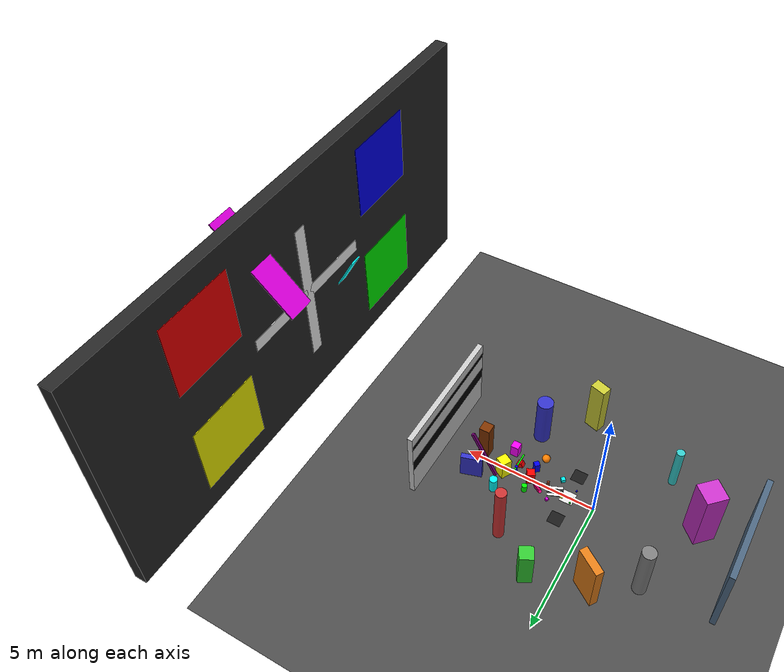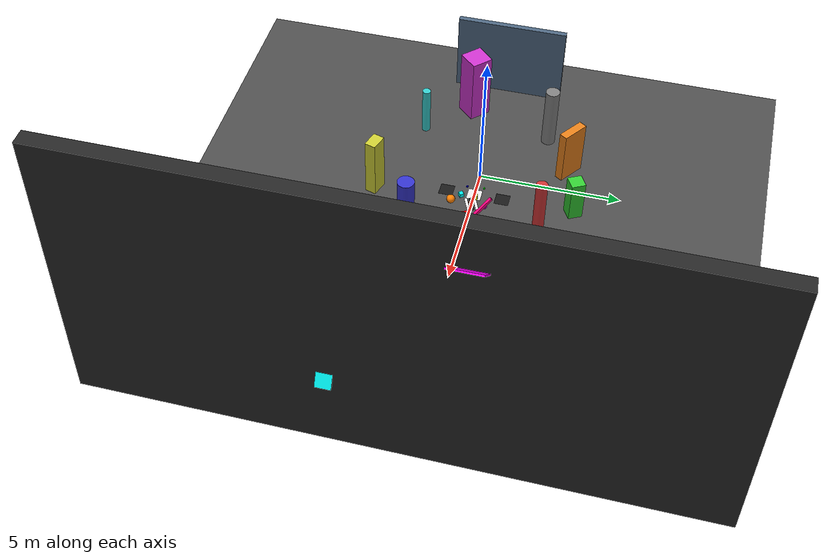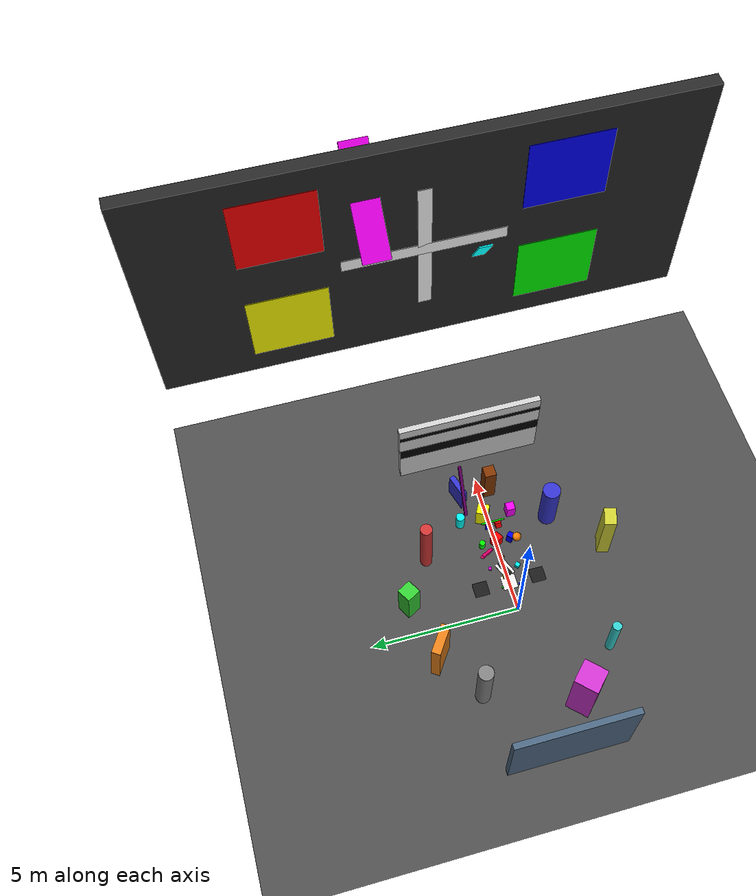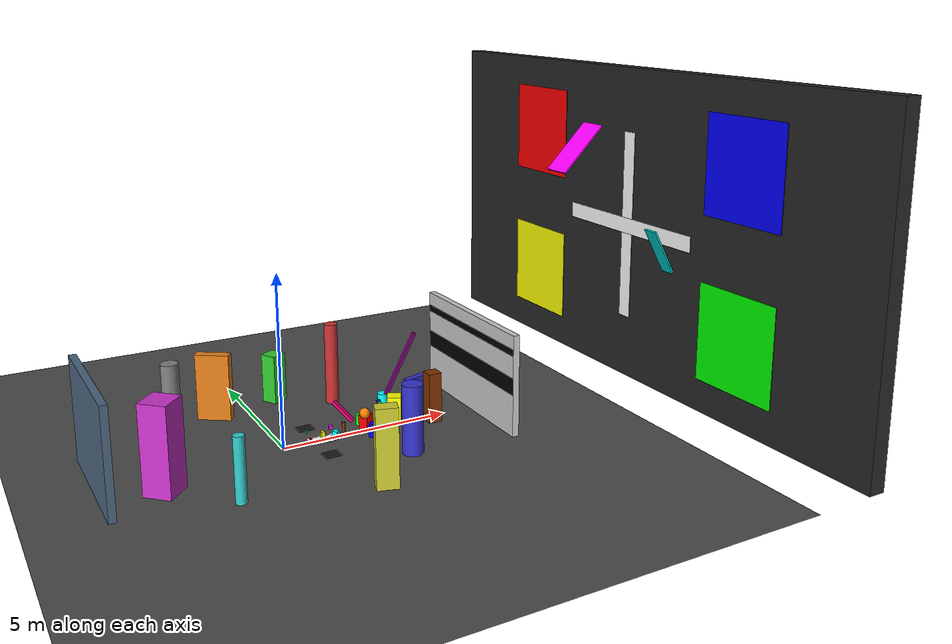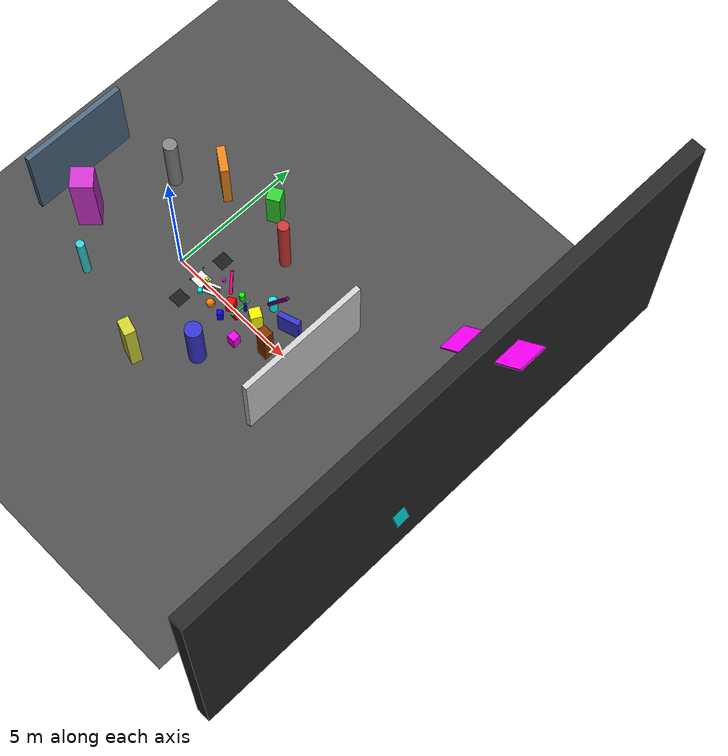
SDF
<sdf version="1.6">
 <world name="geometric_world">
  <physics name="1ms" type="ignored">
   <max_step_size>0.001</max_step_size>
   <real_time_factor>1.0</real_time_factor>
  </physics>
  <plugin filename="gz-sim-physics-system" name="gz::sim::systems::Physics"/>
  <plugin filename="gz-sim-sensors-system" name="gz::sim::systems::Sensors">
   <render_engine>ogre2</render_engine>
  </plugin>
  <plugin filename="gz-sim-user-commands-system" name="gz::sim::systems::UserCommands"/>
  <plugin filename="gz-sim-scene-broadcaster-system" name="gz::sim::systems::SceneBroadcaster"/>
  <scene>
   <ambient>0.8 0.8 0.8</ambient>
   <background>0.7 0.7 0.7</background>
   <grid>false</grid>
   <shadows>true</shadows>
  </scene>
  <light type="directional" name="sun">
   <pose>0 0 10 0 0 0</pose>
   <diffuse>0.9 0.9 0.9 1</diffuse>
   <specular>0.2 0.2 0.2 1</specular>
   <direction>-0.5 0.1 -0.9</direction>
  </light>
  <model name="floor_base">
   <static>true</static>
   <link name="link">
    <collision name="col"><geometry><plane><normal>0 0 1</normal><size>20 20</size></plane></geometry></collision>
    <visual name="vis">
     <geometry><plane><normal>0 0 1</normal><size>20 20</size></plane></geometry>
     <material><ambient>0.3 0.3 0.3 1</ambient><diffuse>0.3 0.3 0.3 1</diffuse></material>
    </visual>
   </link>
  </model>
  <model name="grid_tile_1">
   <static>true</static>
   <pose>1 0 0.01 0 0 0</pose>
   <link name="link">
    <collision name="col">
     <geometry><plane><normal>0 0 1</normal><size>0.5 0.5</size></plane></geometry>
    </collision>
    <visual name="vis">
     <geometry><plane><normal>0 0 1</normal><size>0.5 0.5</size></plane></geometry>
     <material><ambient>0.9 0.9 0.9 1</ambient><diffuse>0.9 0.9 0.9 1</diffuse></material>
    </visual>
   </link>
  </model>
  <model name="grid_tile_2">
   <static>true</static>
   <pose>1 1 0.01 0 0 0</pose>
   <link name="link">
    <collision name="col">
     <geometry><plane><normal>0 0 1</normal><size>0.5 0.5</size></plane></geometry>
    </collision>
    <visual name="vis">
     <geometry><plane><normal>0 0 1</normal><size>0.5 0.5</size></plane></geometry>
     <material><ambient>0.1 0.1 0.1 1</ambient><diffuse>0.1 0.1 0.1 1</diffuse></material>
    </visual>
   </link>
  </model>
  <model name="grid_tile_3">
   <static>true</static>
   <pose>1 -1 0.01 0 0 0</pose>
   <link name="link">
    <collision name="col">
     <geometry><plane><normal>0 0 1</normal><size>0.5 0.5</size></plane></geometry>
    </collision>
    <visual name="vis">
     <geometry><plane><normal>0 0 1</normal><size>0.5 0.5</size></plane></geometry>
     <material><ambient>0.1 0.1 0.1 1</ambient><diffuse>0.1 0.1 0.1 1</diffuse></material>
    </visual>
   </link>
  </model>
  <model name="micro_cube_1">
   <pose>0.8 0.0 0.1 0 0 0.2</pose>
   <static>true</static>
   <link name="link">
    <collision name="c"><geometry><box><size>0.05 0.05 0.05</size></box></geometry></collision>
    <visual name="v">
     <geometry><box><size>0.05 0.05 0.05</size></box></geometry>
     <material><ambient>1 0 0 1</ambient><diffuse>1 0 0 1</diffuse></material>
    </visual>
   </link>
  </model>
  <model name="micro_cube_2">
   <pose>0.8 0.3 0.2 0 0 0.5</pose>
   <static>true</static>
   <link name="link">
    <collision name="c"><geometry><box><size>0.05 0.05 0.05</size></box></geometry></collision>
    <visual name="v">
     <geometry><box><size>0.05 0.05 0.05</size></box></geometry>
     <material><ambient>0 1 0 1</ambient><diffuse>0 1 0 1</diffuse></material>
    </visual>
   </link>
  </model>
  <model name="micro_cube_3">
   <pose>0.8 -0.3 0.15 0 0 -0.5</pose>
   <static>true</static>
   <link name="link">
    <collision name="c"><geometry><box><size>0.05 0.05 0.05</size></box></geometry></collision>
    <visual name="v">
     <geometry><box><size>0.05 0.05 0.05</size></box></geometry>
     <material><ambient>0 0 1 1</ambient><diffuse>0 0 1 1</diffuse></material>
    </visual>
   </link>
  </model>
  <model name="scatter_box_1">
   <pose>1.2 0.1 0.1 0 0 0</pose>
   <static>true</static>
   <link name="link">
    <collision name="c"><geometry><box><size>0.1 0.1 0.2</size></box></geometry></collision>
    <visual name="v">
     <geometry><box><size>0.1 0.1 0.2</size></box></geometry>
     <material><ambient>1 1 0 1</ambient><diffuse>1 1 0 1</diffuse></material>
    </visual>
   </link>
  </model>
  <model name="scatter_box_2">
   <pose>1.4 -0.4 0.3 0 0 0.7</pose>
   <static>true</static>
   <link name="link">
    <collision name="c"><geometry><box><size>0.15 0.15 0.15</size></box></geometry></collision>
    <visual name="v">
     <geometry><box><size>0.15 0.15 0.15</size></box></geometry>
     <material><ambient>0 1 1 1</ambient><diffuse>0 1 1 1</diffuse></material>
    </visual>
   </link>
  </model>
  <model name="scatter_box_3">
   <pose>1.6 0.5 0.1 0 0 -0.3</pose>
   <static>true</static>
   <link name="link">
    <collision name="c"><geometry><box><size>0.1 0.1 0.1</size></box></geometry></collision>
    <visual name="v">
     <geometry><box><size>0.1 0.1 0.1</size></box></geometry>
     <material><ambient>1 0 1 1</ambient><diffuse>1 0 1 1</diffuse></material>
    </visual>
   </link>
  </model>
  <model name="scatter_cone">
   <pose>1.8 0.0 0.2 0 0 0</pose>
   <static>true</static>
   <link name="link">
    <collision name="c">
     <geometry><cylinder><radius>0.05</radius><length>0.4</length></cylinder></geometry>
    </collision>
    <visual name="v">
     <geometry><cylinder><radius>0.05</radius><length>0.4</length></cylinder></geometry>
     <material><ambient>0.5 0.2 0.1 1</ambient><diffuse>0.5 0.2 0.1 1</diffuse></material>
    </visual>
   </link>
  </model>
  <model name="new_pink_cross">
   <pose>2.0 0.5 0.5 0.7 0 0.7</pose>
   <static>true</static>
   <link name="link">
    <collision name="c"><geometry><box><size>0.1 0.8 0.1</size></box></geometry></collision>
    <visual name="v">
     <geometry><box><size>0.1 0.8 0.1</size></box></geometry>
     <material><ambient>1 0 0.5 1</ambient><diffuse>1 0 0.5 1</diffuse></material>
    </visual>
   </link>
  </model>
  <model name="new_orange_orb">
   <pose>2.2 -0.6 0.8 0 0 0</pose>
   <static>true</static>
   <link name="link">
    <collision name="c"><geometry><sphere><radius>0.15</radius></sphere></geometry></collision>
    <visual name="v">
     <geometry><sphere><radius>0.15</radius></sphere></geometry>
     <material><ambient>1 0.5 0 1</ambient><diffuse>1 0.5 0 1</diffuse></material>
    </visual>
   </link>
  </model>
  <model name="new_zebra_block">
   <pose>1.5 0.0 0.02 0 0 0.4</pose>
   <static>true</static>
   <link name="link">
    <collision name="c1"><geometry><box><size>0.6 0.1 0.02</size></box></geometry></collision>
    <visual name="v1">
     <geometry><box><size>0.6 0.1 0.02</size></box></geometry>
     <material><ambient>0 0 0 1</ambient><diffuse>0 0 0 1</diffuse></material>
    </visual>
    <collision name="c2">
     <pose>0 0.15 0 0 0 0</pose>
     <geometry><box><size>0.6 0.1 0.02</size></box></geometry>
    </collision>
    <visual name="v2">
     <pose>0 0.15 0 0 0 0</pose>
     <geometry><box><size>0.6 0.1 0.02</size></box></geometry>
     <material><ambient>1 1 1 1</ambient><diffuse>1 1 1 1</diffuse></material>
    </visual>
    <collision name="c3">
     <pose>0 -0.15 0 0 0 0</pose>
     <geometry><box><size>0.6 0.1 0.02</size></box></geometry>
    </collision>
    <visual name="v3">
     <pose>0 -0.15 0 0 0 0</pose>
     <geometry><box><size>0.6 0.1 0.02</size></box></geometry>
     <material><ambient>1 1 1 1</ambient><diffuse>1 1 1 1</diffuse></material>
    </visual>
   </link>
  </model>
  <model name="new_dense_cluster">
   <pose>3.0 0.0 0.5 0 0 0</pose>
   <static>true</static>
   <link name="l">
    <collision name="c1">
     <pose>0 0.2 0 0 0 0</pose>
     <geometry><cylinder><radius>0.05</radius><length>0.5</length></cylinder></geometry>
    </collision>
    <visual name="v1">
     <pose>0 0.2 0 0 0 0</pose>
     <geometry><cylinder><radius>0.05</radius><length>0.5</length></cylinder></geometry>
     <material><ambient>0 0 1 1</ambient><diffuse>0 0 1 1</diffuse></material>
    </visual>
    <collision name="c2">
     <pose>0 0 0.2 1.57 0 0</pose>
     <geometry><cylinder><radius>0.03</radius><length>0.8</length></cylinder></geometry>
    </collision>
    <visual name="v2">
     <pose>0 0 0.2 1.57 0 0</pose>
     <geometry><cylinder><radius>0.03</radius><length>0.8</length></cylinder></geometry>
     <material><ambient>0 1 0 1</ambient><diffuse>0 1 0 1</diffuse></material>
    </visual>
    <collision name="c3">
     <pose>0 -0.2 -0.1 0 0.5 0</pose>
     <geometry><box><size>0.2 0.2 0.2</size></box></geometry>
    </collision>
    <visual name="v3">
     <pose>0 -0.2 -0.1 0 0.5 0</pose>
     <geometry><box><size>0.2 0.2 0.2</size></box></geometry>
     <material><ambient>1 0 0 1</ambient><diffuse>1 0 0 1</diffuse></material>
    </visual>
   </link>
  </model>
  <model name="new_sky_feature">
   <pose>4.0 0.8 1.5 0 0.5 0</pose>
   <static>true</static>
   <link name="link">
    <collision name="c"><geometry><box><size>0.1 0.1 2.0</size></box></geometry></collision>
    <visual name="v">
     <geometry><box><size>0.1 0.1 2.0</size></box></geometry>
     <material><ambient>0.5 0 0.5 1</ambient><diffuse>0.5 0 0.5 1</diffuse></material>
    </visual>
   </link>
  </model>
  <model name="obj_1_center">
   <pose>2.5 0 0.25 0 0 0.5</pose>
   <static>true</static>
   <link name="link">
    <collision name="c"><geometry><box><size>0.3 0.3 0.5</size></box></geometry></collision>
    <visual name="v">
     <geometry><box><size>0.3 0.3 0.5</size></box></geometry>
     <material><ambient>1 0 0 1</ambient><diffuse>1 0 0 1</diffuse></material>
    </visual>
   </link>
  </model>
  <model name="obj_1_left">
   <pose>2.5 0.5 0.15 0 0 0</pose>
   <static>true</static>
   <link name="link">
    <collision name="c">
     <geometry><cylinder><radius>0.1</radius><length>0.3</length></cylinder></geometry>
    </collision>
    <visual name="v">
     <geometry><cylinder><radius>0.1</radius><length>0.3</length></cylinder></geometry>
     <material><ambient>0 1 0 1</ambient><diffuse>0 1 0 1</diffuse></material>
    </visual>
   </link>
  </model>
  <model name="obj_1_right">
   <pose>2.5 -0.5 0.2 0 0 0.78</pose>
   <static>true</static>
   <link name="link">
    <collision name="c"><geometry><box><size>0.2 0.2 0.4</size></box></geometry></collision>
    <visual name="v">
     <geometry><box><size>0.2 0.2 0.4</size></box></geometry>
     <material><ambient>0 0 1 1</ambient><diffuse>0 0 1 1</diffuse></material>
    </visual>
   </link>
  </model>
  <model name="obj_2_center">
   <pose>3.5 0.2 0.4 0 0 -0.5</pose>
   <static>true</static>
   <link name="link">
    <collision name="c"><geometry><box><size>0.4 0.4 0.8</size></box></geometry></collision>
    <visual name="v">
     <geometry><box><size>0.4 0.4 0.8</size></box></geometry>
     <material><ambient>1 1 0 1</ambient><diffuse>1 1 0 1</diffuse></material>
    </visual>
   </link>
  </model>
  <model name="obj_2_left">
   <pose>3.5 1.0 0.3 0 0 0</pose>
   <static>true</static>
   <link name="link">
    <collision name="c">
     <geometry><cylinder><radius>0.15</radius><length>0.6</length></cylinder></geometry>
    </collision>
    <visual name="v">
     <geometry><cylinder><radius>0.15</radius><length>0.6</length></cylinder></geometry>
     <material><ambient>0 1 1 1</ambient><diffuse>0 1 1 1</diffuse></material>
    </visual>
   </link>
  </model>
  <model name="obj_2_right">
   <pose>3.5 -0.8 0.25 0 0 0</pose>
   <static>true</static>
   <link name="link">
    <collision name="c"><geometry><box><size>0.3 0.3 0.5</size></box></geometry></collision>
    <visual name="v">
     <geometry><box><size>0.3 0.3 0.5</size></box></geometry>
     <material><ambient>1 0 1 1</ambient><diffuse>1 0 1 1</diffuse></material>
    </visual>
   </link>
  </model>
  <model name="obj_3_tall">
   <pose>4.5 -0.3 0.75 0 0 0</pose>
   <static>true</static>
   <link name="link">
    <collision name="c"><geometry><box><size>0.4 0.4 1.5</size></box></geometry></collision>
    <visual name="v">
     <geometry><box><size>0.4 0.4 1.5</size></box></geometry>
     <material><ambient>0.5 0.2 0 1</ambient><diffuse>0.5 0.2 0 1</diffuse></material>
    </visual>
   </link>
  </model>
  <model name="obj_3_wide">
   <pose>4.5 0.8 0.5 0 0 0.3</pose>
   <static>true</static>
   <link name="link">
    <collision name="c"><geometry><box><size>0.8 0.2 1.0</size></box></geometry></collision>
    <visual name="v">
     <geometry><box><size>0.8 0.2 1.0</size></box></geometry>
     <material><ambient>0.2 0.2 0.8 1</ambient><diffuse>0.2 0.2 0.8 1</diffuse></material>
    </visual>
   </link>
  </model>
  <model name="feature_wall_back">
   <pose>6.0 0 1.5 0 0 0</pose>
   <static>true</static>
   <link name="link">
    <collision name="c"><geometry><box><size>0.2 5.0 3.0</size></box></geometry></collision>
    <visual name="v">
     <geometry><box><size>0.2 5.0 3.0</size></box></geometry>
     <material><ambient>0.8 0.8 0.8 1</ambient><diffuse>0.8 0.8 0.8 1</diffuse></material>
    </visual>
   </link>
  </model>
  <model name="feature_stripe_1">
   <static>true</static>
   <pose>5.9 0 1.5 0 0 0</pose>
   <link name="link">
    <collision name="c"><geometry><box><size>0.01 5.0 0.5</size></box></geometry></collision>
    <visual name="v">
     <geometry><box><size>0.01 5.0 0.5</size></box></geometry>
     <material><ambient>0 0 0 1</ambient><diffuse>0 0 0 1</diffuse></material>
    </visual>
   </link>
  </model>
  <model name="feature_stripe_2">
   <static>true</static>
   <pose>5.9 0 2.5 0 0 0</pose>
   <link name="link">
    <collision name="c"><geometry><box><size>0.01 5.0 0.2</size></box></geometry></collision>
    <visual name="v">
     <geometry><box><size>0.01 5.0 0.2</size></box></geometry>
     <material><ambient>0 0 0 1</ambient><diffuse>0 0 0 1</diffuse></material>
    </visual>
   </link>
  </model>
  <model name="giant_slam_feature_wall">
   <pose>12.0 0 5.0 0 0 0</pose>
   <static>true</static>
   <link name="link">
    <collision name="c"><geometry><box><size>0.5 20.0 10.0</size></box></geometry></collision>
    <visual name="wall_base">
     <geometry><box><size>0.5 20.0 10.0</size></box></geometry>
     <material><ambient>0.15 0.15 0.15 1</ambient><diffuse>0.15 0.15 0.15 1</diffuse></material>
    </visual>
    <collision name="c_red">
     <pose>-0.26 5.0 2.5 0 0 0</pose>
     <geometry><box><size>0.02 3.0 3.0</size></box></geometry>
    </collision>
    <visual name="block_red">
     <pose>-0.26 5.0 2.5 0 0 0</pose>
     <geometry><box><size>0.02 3.0 3.0</size></box></geometry>
     <material><ambient>1 0 0 1</ambient><diffuse>1 0 0 1</diffuse></material>
    </visual>
    <collision name="c_blue">
     <pose>-0.26 -5.0 2.5 0 0 0</pose>
     <geometry><box><size>0.02 3.0 3.0</size></box></geometry>
    </collision>
    <visual name="block_blue">
     <pose>-0.26 -5.0 2.5 0 0 0</pose>
     <geometry><box><size>0.02 3.0 3.0</size></box></geometry>
     <material><ambient>0 0 1 1</ambient><diffuse>0 0 1 1</diffuse></material>
    </visual>
    <collision name="c_yellow">
     <pose>-0.26 5.0 -2.5 0 0 0</pose>
     <geometry><box><size>0.02 3.0 3.0</size></box></geometry>
    </collision>
    <visual name="block_yellow">
     <pose>-0.26 5.0 -2.5 0 0 0</pose>
     <geometry><box><size>0.02 3.0 3.0</size></box></geometry>
     <material><ambient>1 1 0 1</ambient><diffuse>1 1 0 1</diffuse></material>
    </visual>
    <collision name="c_green">
     <pose>-0.26 -5.0 -2.5 0 0 0</pose>
     <geometry><box><size>0.02 3.0 3.0</size></box></geometry>
    </collision>
    <visual name="block_green">
     <pose>-0.26 -5.0 -2.5 0 0 0</pose>
     <geometry><box><size>0.02 3.0 3.0</size></box></geometry>
     <material><ambient>0 1 0 1</ambient><diffuse>0 1 0 1</diffuse></material>
    </visual>
    <collision name="c_cross_h">
     <pose>-0.28 0 0 0 0 0</pose>
     <geometry><box><size>0.02 6.0 0.5</size></box></geometry>
    </collision>
    <visual name="center_cross_h">
     <pose>-0.28 0 0 0 0 0</pose>
     <geometry><box><size>0.02 6.0 0.5</size></box></geometry>
     <material><ambient>1 1 1 1</ambient><diffuse>1 1 1 1</diffuse></material>
    </visual>
    <collision name="c_cross_v">
     <pose>-0.28 0 0 0 0 0</pose>
     <geometry><box><size>0.02 0.5 6.0</size></box></geometry>
    </collision>
    <visual name="center_cross_v">
     <pose>-0.28 0 0 0 0 0</pose>
     <geometry><box><size>0.02 0.5 6.0</size></box></geometry>
     <material><ambient>1 1 1 1</ambient><diffuse>1 1 1 1</diffuse></material>
    </visual>
    <collision name="c_stripe1">
     <pose>-0.26 2.0 3.0 0 0.78 0</pose>
     <geometry><box><size>0.05 1.0 4.0</size></box></geometry>
    </collision>
    <visual name="stripe_1">
     <pose>-0.26 2.0 3.0 0 0.78 0</pose>
     <geometry><box><size>0.05 1.0 4.0</size></box></geometry>
     <material><ambient>1 0 1 1</ambient><diffuse>1 0 1 1</diffuse></material>
    </visual>
    <collision name="c_stripe2">
     <pose>-0.26 -2.0 -1.0 0 -0.5 0</pose>
     <geometry><box><size>0.05 0.5 3.0</size></box></geometry>
    </collision>
    <visual name="stripe_2">
     <pose>-0.26 -2.0 -1.0 0 -0.5 0</pose>
     <geometry><box><size>0.05 0.5 3.0</size></box></geometry>
     <material><ambient>0 1 1 1</ambient><diffuse>0 1 1 1</diffuse></material>
    </visual>
   </link>
  </model>
  <model name="lidar_pillar_1">
   <pose>2.5 2.5 1.25 0 0 0</pose>
   <static>true</static>
   <link name="link">
    <collision name="c">
     <geometry><cylinder><radius>0.2</radius><length>2.5</length></cylinder></geometry>
    </collision>
    <visual name="v">
     <geometry><cylinder><radius>0.2</radius><length>2.5</length></cylinder></geometry>
     <material><ambient>0.8 0.2 0.2 1</ambient><diffuse>0.8 0.2 0.2 1</diffuse></material>
    </visual>
   </link>
  </model>
  <model name="lidar_box_1">
   <pose>1.0 3.5 0.75 0 0 0.5</pose>
   <static>true</static>
   <link name="link">
    <collision name="c"><geometry><box><size>0.5 0.5 1.5</size></box></geometry></collision>
    <visual name="v">
     <geometry><box><size>0.5 0.5 1.5</size></box></geometry>
     <material><ambient>0.2 0.8 0.2 1</ambient><diffuse>0.2 0.8 0.2 1</diffuse></material>
    </visual>
   </link>
  </model>
  <model name="lidar_pillar_2">
   <pose>3.0 -2.0 1.0 0 0 0</pose>
   <static>true</static>
   <link name="link">
    <collision name="c">
     <geometry><cylinder><radius>0.3</radius><length>2.0</length></cylinder></geometry>
    </collision>
    <visual name="v">
     <geometry><cylinder><radius>0.3</radius><length>2.0</length></cylinder></geometry>
     <material><ambient>0.2 0.2 0.8 1</ambient><diffuse>0.2 0.2 0.8 1</diffuse></material>
    </visual>
   </link>
  </model>
  <model name="lidar_box_2">
   <pose>1.5 -3.5 1.1 0 0 -0.3</pose>
   <static>true</static>
   <link name="link">
    <collision name="c"><geometry><box><size>0.6 0.4 2.2</size></box></geometry></collision>
    <visual name="v">
     <geometry><box><size>0.6 0.4 2.2</size></box></geometry>
     <material><ambient>0.8 0.8 0.2 1</ambient><diffuse>0.8 0.8 0.2 1</diffuse></material>
    </visual>
   </link>
  </model>
  <model name="lidar_pillar_3">
   <pose>-2.0 -2.5 0.9 0 0 0</pose>
   <static>true</static>
   <link name="link">
    <collision name="c">
     <geometry><cylinder><radius>0.15</radius><length>1.8</length></cylinder></geometry>
    </collision>
    <visual name="v">
     <geometry><cylinder><radius>0.15</radius><length>1.8</length></cylinder></geometry>
     <material><ambient>0.2 0.8 0.8 1</ambient><diffuse>0.2 0.8 0.8 1</diffuse></material>
    </visual>
   </link>
  </model>
  <model name="lidar_box_3">
   <pose>-3.5 -1.0 1.25 0 0 0.8</pose>
   <static>true</static>
   <link name="link">
    <collision name="c"><geometry><box><size>0.8 0.8 2.5</size></box></geometry></collision>
    <visual name="v">
     <geometry><box><size>0.8 0.8 2.5</size></box></geometry>
     <material><ambient>0.8 0.2 0.8 1</ambient><diffuse>0.8 0.2 0.8 1</diffuse></material>
    </visual>
   </link>
  </model>
  <model name="lidar_pillar_4">
   <pose>-2.5 2.0 1.15 0 0 0</pose>
   <static>true</static>
   <link name="link">
    <collision name="c">
     <geometry><cylinder><radius>0.25</radius><length>2.3</length></cylinder></geometry>
    </collision>
    <visual name="v">
     <geometry><cylinder><radius>0.25</radius><length>2.3</length></cylinder></geometry>
     <material><ambient>0.5 0.5 0.5 1</ambient><diffuse>0.5 0.5 0.5 1</diffuse></material>
    </visual>
   </link>
  </model>
  <model name="lidar_box_4">
   <pose>-1.0 3.0 1.0 0 0 -0.6</pose>
   <static>true</static>
   <link name="link">
    <collision name="c"><geometry><box><size>1.0 0.3 2.0</size></box></geometry></collision>
    <visual name="v">
     <geometry><box><size>1.0 0.3 2.0</size></box></geometry>
     <material><ambient>0.9 0.5 0.1 1</ambient><diffuse>0.9 0.5 0.1 1</diffuse></material>
    </visual>
   </link>
  </model>
  <model name="lidar_wall_back">
   <pose>-5.0 0 1.5 0 0 0</pose>
   <static>true</static>
   <link name="link">
    <collision name="c"><geometry><box><size>0.2 4.0 3.0</size></box></geometry></collision>
    <visual name="v">
     <geometry><box><size>0.2 4.0 3.0</size></box></geometry>
     <material><ambient>0.3 0.4 0.5 1</ambient><diffuse>0.3 0.4 0.5 1</diffuse></material>
    </visual>
   </link>
  </model>
 </world>
</sdf>
